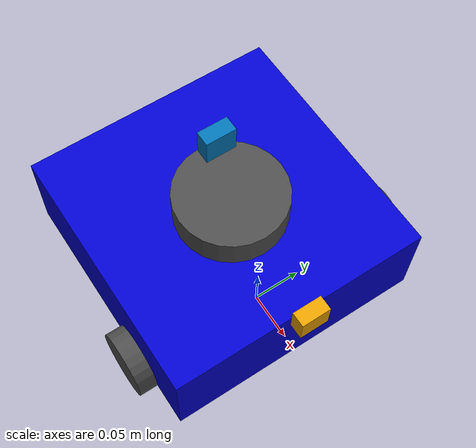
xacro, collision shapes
<?xml version="1.0" ?>
<robot name="turtlebot3_waffle_pi" xmlns:xacro="http://ros.org/wiki/xacro">
  <xacro:include filename="$(find robutler1_description)/urdf/common_properties.xacro"/>
  <xacro:include filename="$(find robutler1_description)/urdf/robutler1.gazebo.xacro"/>
  <link name="base_footprint"/>

  <joint name="base_joint" type="fixed">
    <parent link="base_footprint"/>
    <child link="base_link" />
    <origin xyz="0 0 0.010" rpy="0 0 0"/>
  </joint>

  <!-- base link -->
  <link name="base_link">
    <visual>
      <origin xyz="-0.064 0 0.0" rpy="0 0 0"/>
      <geometry>
        <mesh filename="package://turtlebot3_description/meshes/bases/waffle_pi_base.stl" scale="0.001 0.001 0.001"/>
      </geometry>
      <material name="blue"/>
    </visual>

    <collision>
      <origin xyz="-0.064 0 0.047" rpy="0 0 0"/>
      <geometry>
        <box size="0.266 0.266 0.094"/>
      </geometry>
    </collision>

    <inertial>
      <origin xyz="0 0 0" rpy="0 0 0"/>
      <mass value="1.3729096e+00"/>
      <inertia ixx="8.7002718e-03" ixy="-4.7576583e-05" ixz="1.1160499e-04"
               iyy="8.6195418e-03" iyz="-3.5422299e-06"
               izz="1.4612727e-02" />
    </inertial>
  </link>

  <!-- left wheel and left wheel joint -->
  <joint name="wheel_left_joint" type="continuous">
    <parent link="base_link"/>
    <child link="wheel_left_link"/>
    <origin xyz="0.0 0.144 0.023" rpy="-1.57 0 0"/>
    <axis xyz="0 0 1"/>
  </joint>

  <link name="wheel_left_link">
    <visual>
      <origin xyz="0 0 0" rpy="1.57 0 0"/>
      <geometry>
        <mesh filename="package://turtlebot3_description/meshes/wheels/left_tire.stl" scale="0.001 0.001 0.001"/>
      </geometry>
      <material name="dark"/>
    </visual>

    <collision>
      <origin xyz="0 0 0" rpy="0 0 0"/>
      <geometry>
        <cylinder length="0.018" radius="0.033"/>
      </geometry>
    </collision>

    <inertial>
      <origin xyz="0 0 0" />
      <mass value="2.8498940e-02" />
      <inertia ixx="1.1175580e-05" ixy="-4.2369783e-11" ixz="-5.9381719e-09"
               iyy="1.1192413e-05" iyz="-1.4400107e-11"
               izz="2.0712558e-05" />
      </inertial>
  </link>

  <!-- right wheel and right wheel joint -->
  <joint name="wheel_right_joint" type="continuous">
    <parent link="base_link"/>
    <child link="wheel_right_link"/>
    <origin xyz="0.0 -0.144 0.023" rpy="-1.57 0 0"/>
    <axis xyz="0 0 1"/>
  </joint>

  <link name="wheel_right_link">
    <visual>
      <origin xyz="0 0 0" rpy="1.57 0 0"/>
      <geometry>
        <mesh filename="package://turtlebot3_description/meshes/wheels/right_tire.stl" scale="0.001 0.001 0.001"/>
      </geometry>
      <material name="dark"/>
    </visual>

    <collision>
      <origin xyz="0 0 0" rpy="0 0 0"/>
      <geometry>
        <cylinder length="0.018" radius="0.033"/>
      </geometry>
    </collision>

    <inertial>
      <origin xyz="0 0 0" />
      <mass value="2.8498940e-02" />
      <inertia ixx="1.1175580e-05" ixy="-4.2369783e-11" ixz="-5.9381719e-09"
               iyy="1.1192413e-05" iyz="-1.4400107e-11"
               izz="2.0712558e-05" />
      </inertial>
  </link>

  <!-- Right back wheel and joint -->
  <joint name="caster_back_right_joint" type="fixed">
    <parent link="base_link"/>
    <child link="caster_back_right_link"/>
    <origin xyz="-0.177 -0.064 -0.004" rpy="-1.57 0 0"/>
  </joint>

  <link name="caster_back_right_link">
    <collision>
      <origin xyz="0 0.001 0" rpy="0 0 0"/>
      <geometry>
        <box size="0.030 0.009 0.020"/>
      </geometry>
    </collision>

    <inertial>
      <origin xyz="0 0 0" />
      <mass value="0.005" />
      <inertia ixx="0.001" ixy="0.0" ixz="0.0"
               iyy="0.001" iyz="0.0"
               izz="0.001" />
    </inertial>
  </link>

  <!-- Left back wheel and joint -->
  <joint name="caster_back_left_joint" type="fixed">
    <parent link="base_link"/>
    <child link="caster_back_left_link"/>
    <origin xyz="-0.177 0.064 -0.004" rpy="-1.57 0 0"/>
  </joint>

  <link name="caster_back_left_link">
    <collision>
      <origin xyz="0 0.001 0" rpy="0 0 0"/>
      <geometry>
        <box size="0.030 0.009 0.020"/>
      </geometry>
    </collision>

    <inertial>
      <origin xyz="0 0 0" />
      <mass value="0.005" />
      <inertia ixx="0.001" ixy="0.0" ixz="0.0"
               iyy="0.001" iyz="0.0"
               izz="0.001" />
    </inertial>
  </link>

  <!-- IMU and joint -->
  <joint name="imu_joint" type="fixed">
    <parent link="base_link"/>
    <child link="imu_link"/>
    <origin xyz="0.0 0 0.068" rpy="0 0 0"/>
  </joint>

  <link name="imu_link"/>

  <!-- Lidar and joint -->
  <joint name="scan_joint" type="fixed">
    <parent link="base_link"/>
    <child link="base_scan"/>
    <origin xyz="-0.064 0 0.122" rpy="0 0 0"/>
  </joint>

  <link name="base_scan">
    <visual>
      <origin xyz="0 0 0.0" rpy="0 0 0"/>
      <geometry>
        <mesh filename="package://turtlebot3_description/meshes/sensors/lds.stl" scale="0.001 0.001 0.001"/>
      </geometry>
      <material name="dark"/>
    </visual>

    <collision>
      <origin xyz="0.015 0 -0.0065" rpy="0 0 0"/>
      <geometry>
        <cylinder length="0.0315" radius="0.055"/>
      </geometry>
    </collision>

    <inertial>
      <mass value="0.114" />
      <origin xyz="0 0 0" />
      <inertia ixx="0.001" ixy="0.0" ixz="0.0"
               iyy="0.001" iyz="0.0"
               izz="0.001" />
    </inertial>
  </link>

  <!-- old camera -->
  <joint name="camera_joint" type="fixed">
    <origin xyz="0.073 -0.011 0.084" rpy="0 0 0"/>
    <parent link="base_link"/>
    <child link="camera_link"/>
  </joint>

  <link name="camera_link">
    <collision>
      <origin xyz="0.005 0.011 0.013" rpy="0 0 0"/>
      <geometry>
        <box size="0.015 0.030 0.027"/>
      </geometry>
    </collision>
  </link>

  <joint name="camera_rgb_joint" type="fixed">
    <origin xyz="0.003 0.011 0.009" rpy="0 0 0"/>
    <parent link="camera_link"/>
    <child link="camera_rgb_frame"/>
  </joint>
  <link name="camera_rgb_frame"/>

  <joint name="camera_rgb_optical_joint" type="fixed">
    <origin xyz="0 0 0" rpy="-1.57 0 -1.57"/>
    <parent link="camera_rgb_frame"/>
    <child link="camera_rgb_optical_frame"/>
  </joint>
  <link name="camera_rgb_optical_frame"/>

  <!-- Rotating Camera base -->
  <link name="rotating_camera_base_link">
    <visual>
      <geometry>
        <cylinder length="0.05" radius="0.01" />
      </geometry>
      <origin xyz="0 0 0.025" rpy="0 0 0" />
      <material name="white" />
    </visual>
    <inertial>
      <mass value="0.04" />
      <origin xyz="0 0 0" />
      <inertia ixx="0.001" ixy="0.0" ixz="0.0"
               iyy="0.001" iyz="0.0"
               izz="0.001" />
    </inertial>
  </link>

  <!-- Joint for Rotating Camera base -->
  <joint name="rotating_camera_base_joint" type="continuous">
    <origin xyz="-0.15 0 0.09" rpy="0 0 0"/>
    <parent link="base_link"/>
    <child link="rotating_camera_base_link"/>
    <axis xyz="0 0 1" />
  </joint>

  <!-- new camera -->
  <joint name="camera2_joint" type="fixed">
    <origin xyz="0.073 -0.011 0.084" rpy="0 0 0"/>
    <parent link="rotating_camera_base_link"/>
    <child link="camera2_link"/>
  </joint>

  <link name="camera2_link">
    <collision>
      <origin xyz="0.005 0.011 0.013" rpy="0 0 0"/>
      <geometry>
        <box size="0.015 0.030 0.027"/>
      </geometry>
    </collision>
  </link>

  <joint name="camera2_rgb_joint" type="fixed">
    <origin xyz="0.003 0.011 0.009" rpy="0 0 0"/>
    <parent link="camera2_link"/>
    <child link="camera2_rgb_frame"/>
  </joint>
  <link name="camera2_rgb_frame"/>

  <joint name="camera2_rgb_optical_joint" type="fixed">
    <origin xyz="0 0 0" rpy="-1.57 0 -1.57"/>
    <parent link="camera2_rgb_frame"/>
    <child link="camera2_rgb_optical_frame"/>
  </joint>
  <link name="camera2_rgb_optical_frame"/>

</robot>

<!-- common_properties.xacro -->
<robot name="xacro_properties" xmlns:xacro="http://ros.org/wiki/xacro">

  <!-- Init colour -->
  <material name="black">
      <color rgba="0.0 0.0 0.0 1.0"/>
  </material>

  <material name="dark">
    <color rgba="0.3 0.3 0.3 1.0"/>
  </material>
  <material name="light_black">
    <color rgba="0.4 0.4 0.4 1.0"/>
  </material>

  <material name="blue">
    <color rgba="0.0 0.0 0.8 1.0"/>
  </material>

  <material name="green">
    <color rgba="0.0 0.8 0.0 1.0"/>
  </material>

  <material name="grey">
    <color rgba="0.5 0.5 0.5 1.0"/>
  </material>

  <material name="orange">
    <color rgba="${255/255} ${108/255} ${10/255} 1.0"/>
  </material>

  <material name="brown">
    <color rgba="${222/255} ${207/255} ${195/255} 1.0"/>
  </material>

  <material name="red">
    <color rgba="0.8 0.0 0.0 1.0"/>
  </material>

  <material name="white">
    <color rgba="1.0 1.0 1.0 1.0"/>
  </material>

  <material name="invisible">
    <color rgba="1.0 1.0 1.0 0.05"/>
  </material>
</robot>
